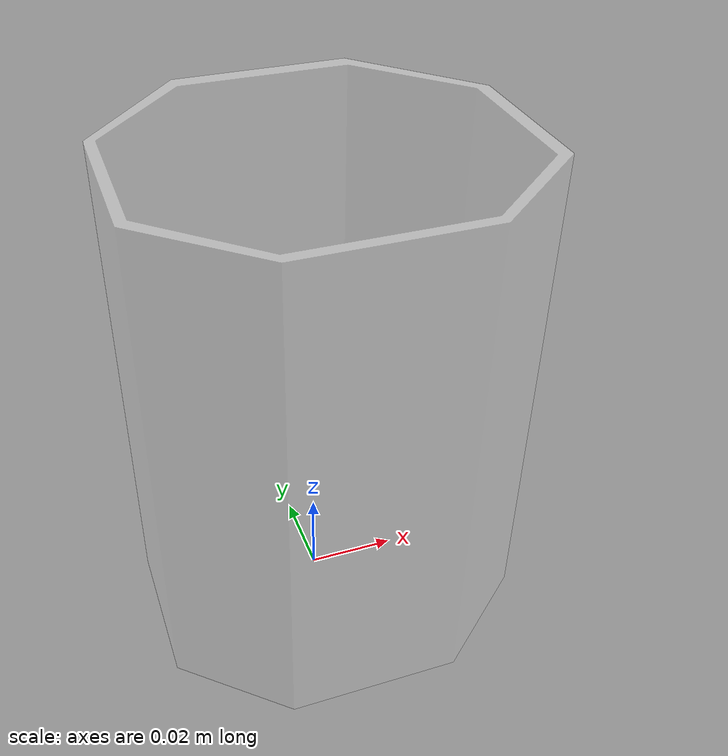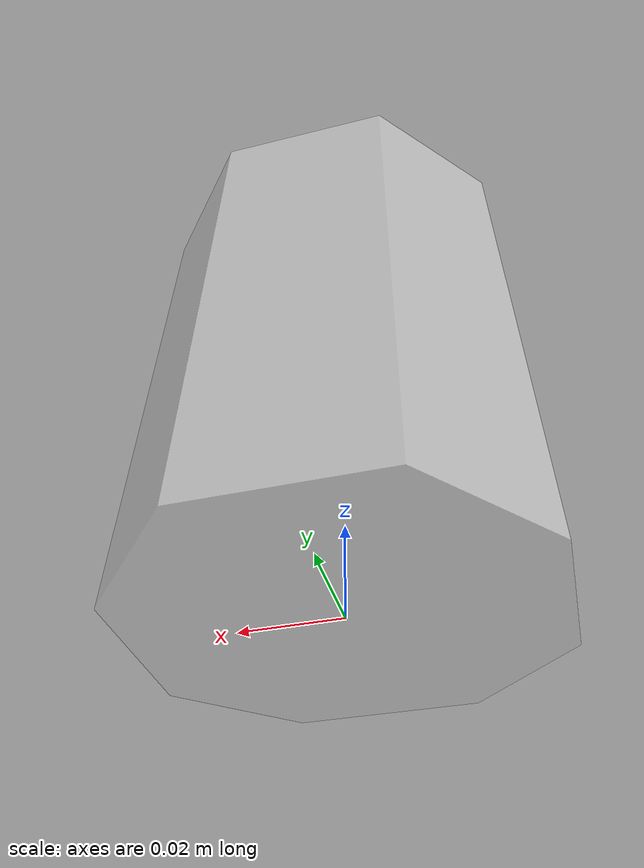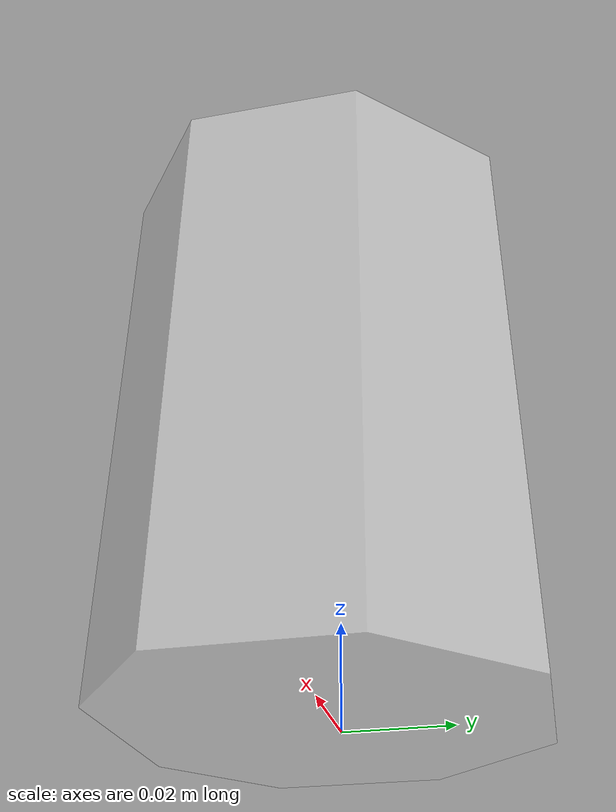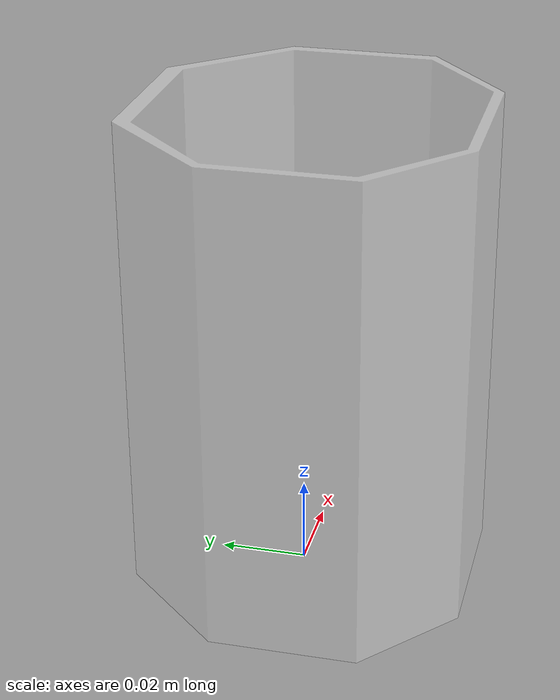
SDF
<?xml version='1.0'?>
<sdf version='1.6'>
  <model name='cup_glass_hex'>
    <link name='link_17'>
       <visual name='visual'>
        <pose frame=''>0 0 0 0 -0 0</pose>
        <geometry>
          <mesh>
            <uri>model://cup_glass_hex/meshes/cup_glass2.dae</uri>
            <scale>1 1 1</scale>
          </mesh>
        </geometry>
        <material>
          <lighting>1</lighting>
          <ambient>0.976 0.976 0.976 1</ambient>
          <diffuse>0.976 0.976 0.976 1</diffuse>
          <specular>0.01 0.01 0.01 1</specular>
          <emissive>0 0 0 1</emissive>
          <shader type='vertex'>
            <normal_map>__default__</normal_map>
          </shader>
        </material>
        <cast_shadows>1</cast_shadows>
        <transparency>0.6</transparency>
      </visual>
      <collision name='collision'>
        <laser_retro>0</laser_retro>
        <max_contacts>10</max_contacts>
         <geometry>
          <mesh>
            <uri>model://cup_glass_hex/meshes/cup_glass2.dae</uri>
            <scale>1 1 1</scale>
          </mesh>
        </geometry>
      </collision>
    </link>
    <static>1</static>
    <allow_auto_disable>1</allow_auto_disable>
  </model>
</sdf>
